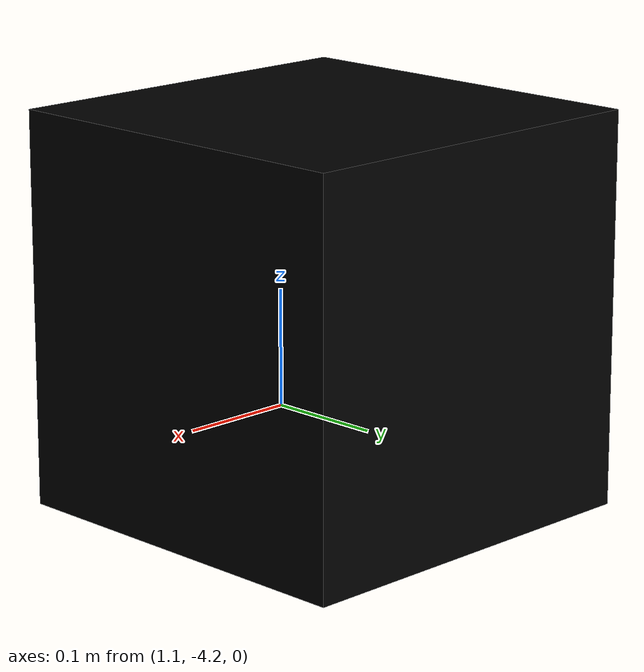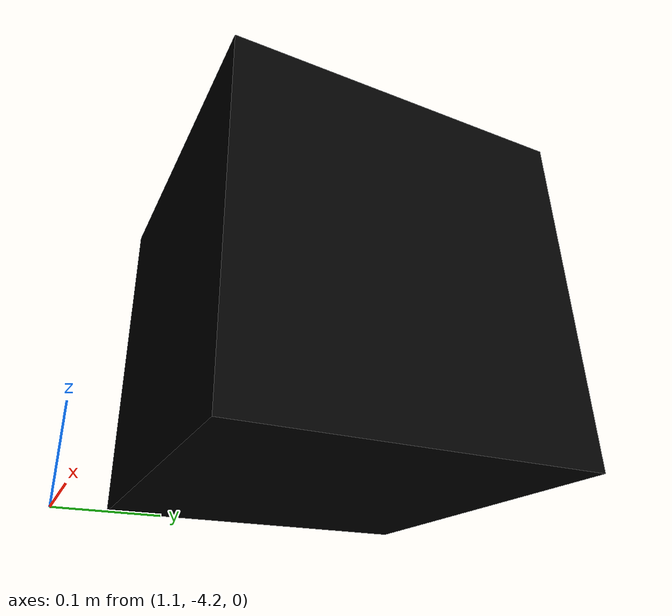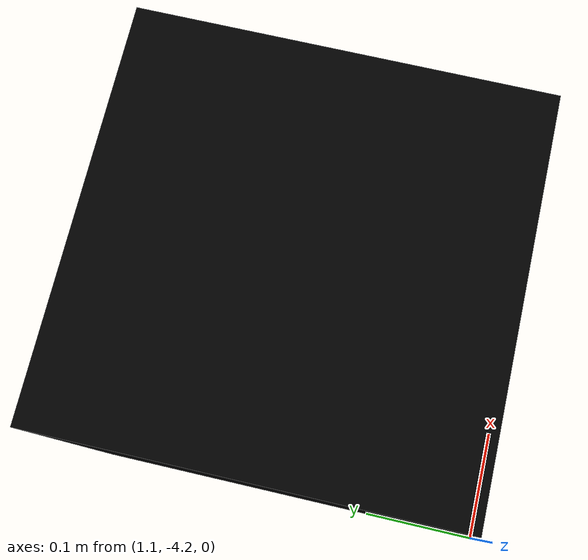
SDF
<?xml version='1.0'?>
<sdf version='1.4'>
  <model name="AruCo_Block_10">
    <static>true</static>
    <link name='chassis'>
      <pose>1.25 -4 0.15 0 0 0</pose>

      <collision name='collision'>
        <geometry>
          <box>
            <size>.3 .3 .3</size>
          </box>
        </geometry>
      </collision>

      <visual name='visual_10'>
        <geometry>
          <box>
            <size>.3 .3 .3</size>
          </box>
        </geometry>
        <material>
          <script>
            <uri>model://AruCo_Block_10/materials/scripts</uri>
            <uri>model://AruCo_Block_10/materials/textures</uri>
            <name>block10</name>
          </script>
          <ambient>0 0 0 1</ambient>
          <diffuse>0 0 0 1</diffuse>
          <specular>0 0 0 0</specular>s
          <emissive>1 1 1 1</emissive>
        </material>
      </visual>
    </link>
  </model>
</sdf>
